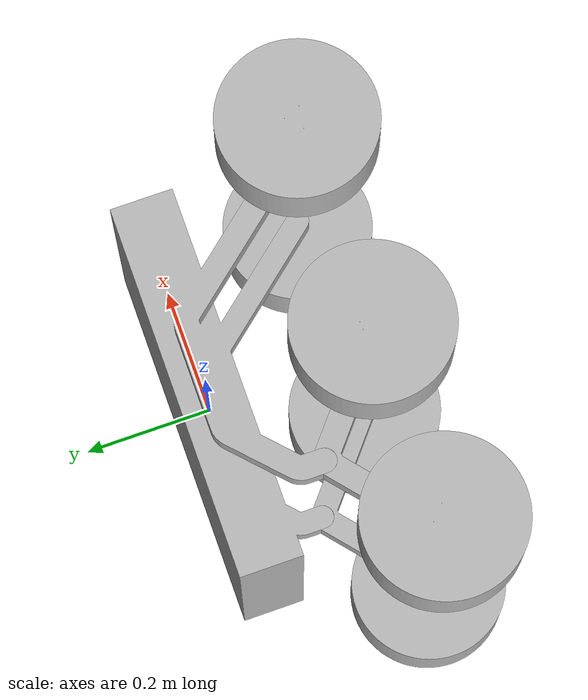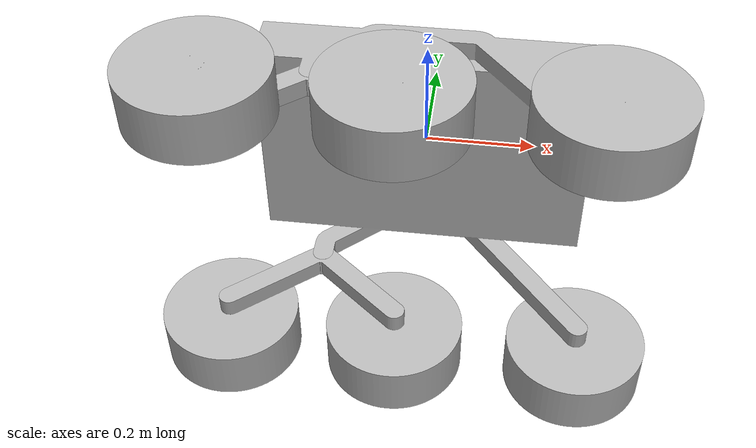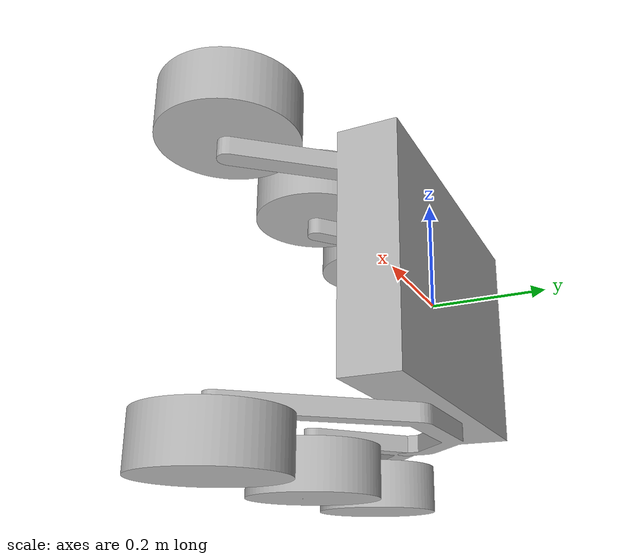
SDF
<?xml version="1.0" ?>
<sdf version="1.6">
	<model name="stairbot">
		<link name="link_BogieLeft">
			<self_collide>false</self_collide>
			<pose frame="">-0.18194899999999994 -0.19817088501537544 0.2165 0.0 -0.0 0.0</pose>
			<inertial>
				<pose frame="">0.0 0.0 0.0 0 0 0</pose>
				<mass>3.920183302812308</mass>
				<inertia>
					<ixx>0.3437134229722694</ixx>
					<ixy>-0.14135002723050621</ixy>
					<ixz>0.1544236979767753</ixz>
					<iyy>0.3523377166612942</iyy>
					<iyz>0.16819153111808594</iyz>
					<izz>0.3278440027336147</izz>
				</inertia>
			</inertial>
			<collision name="link_BogieLeft_collision">
				<geometry>
					<mesh>
						<uri>model://stairbot/meshes/CAD/link_BogieLeft.stl</uri>
						<scale>0.001 0.001 0.001</scale>
					</mesh>
				</geometry>
			</collision>
			<visual name="link_BogieLeft_visual">
				<geometry>
					<mesh>
						<uri>model://stairbot/meshes/CAD/link_BogieLeft.stl</uri>
						<scale>0.001 0.001 0.001</scale>
					</mesh>
				</geometry>
			</visual>
		</link>
		<link name="link_WheelL2">
			<self_collide>false</self_collide>
			<pose frame="">-0.028740204198052594 -0.2525773415442297 0.28072295564612065 0.0 -0.0 0.0</pose>
			<inertial>
				<pose frame="">0.0 0.0 0.0 0 0 0</pose>
				<mass>35.9313939906854</mass>
				<inertia>
					<ixx>5.2945383863462165</ixx>
					<ixy>-0.2608304578324393</ixy>
					<ixz>0.2898957467715598</ixz>
					<iyy>3.0319631512458227</iyy>
					<iyz>2.5476888243369586</iyz>
					<izz>2.608785716813732</izz>
				</inertia>
			</inertial>
			<collision name="link_WheelL2_collision">
				<geometry>
					<mesh>
						<uri>model://stairbot/meshes/CAD/link_WheelL2.stl</uri>
						<scale>0.001 0.001 0.001</scale>
					</mesh>
				</geometry>
			</collision>
			<visual name="link_WheelL2_visual">
				<geometry>
					<mesh>
						<uri>model://stairbot/meshes/CAD/link_WheelL2.stl</uri>
						<scale>0.001 0.001 0.001</scale>
					</mesh>
				</geometry>
			</visual>
		</link>
		<link name="link_WheelL1">
			<self_collide>false</self_collide>
			<pose frame="">-0.3351577958019488 -0.2525773415441829 0.28072295564612065 0.0 -0.0 0.0</pose>
			<inertial>
				<pose frame="">0.0 0.0 0.0 0 0 0</pose>
				<mass>35.93139399068536</mass>
				<inertia>
					<ixx>5.29453838637414</ixx>
					<ixy>-3.041709819521394</ixy>
					<ixz>3.380658635226414</ixz>
					<iyy>7.0384842103859935</iyy>
					<iyz>2.547688824336482</iyz>
					<izz>6.615306775981836</izz>
				</inertia>
			</inertial>
			<collision name="link_WheelL1_collision">
				<geometry>
					<mesh>
						<uri>model://stairbot/meshes/CAD/link_WheelL1.stl</uri>
						<scale>0.001 0.001 0.001</scale>
					</mesh>
				</geometry>
			</collision>
			<visual name="link_WheelL1_visual">
				<geometry>
					<mesh>
						<uri>model://stairbot/meshes/CAD/link_WheelL1.stl</uri>
						<scale>0.001 0.001 0.001</scale>
					</mesh>
				</geometry>
			</visual>
		</link>
		<link name="link_WheelL3">
			<self_collide>false</self_collide>
			<pose frame="">0.30245420419810576 -0.2525773415442754 0.28072295564612065 0.0 -0.0 0.0</pose>
			<inertial>
				<pose frame="">0.0 0.0 0.0 0 0 0</pose>
				<mass>35.931393990685336</mass>
				<inertia>
					<ixx>5.2945383863509505</ixx>
					<ixy>2.744909813796213</ixy>
					<ixz>-3.0507851226801623</ixz>
					<iyy>6.289235508600166</iyy>
					<iyz>2.5476888243374143</iyz>
					<izz>5.86605807417282</izz>
				</inertia>
			</inertial>
			<collision name="link_WheelL3_collision">
				<geometry>
					<mesh>
						<uri>model://stairbot/meshes/CAD/link_WheelL3.stl</uri>
						<scale>0.001 0.001 0.001</scale>
					</mesh>
				</geometry>
			</collision>
			<visual name="link_WheelL3_visual">
				<geometry>
					<mesh>
						<uri>model://stairbot/meshes/CAD/link_WheelL3.stl</uri>
						<scale>0.001 0.001 0.001</scale>
					</mesh>
				</geometry>
			</visual>
		</link>
		<link name="link_BogieRight">
			<self_collide>false</self_collide>
			<pose frame="">-0.18194881435621743 -0.19817088501537544 -0.21650000000000003 0.0 -0.0 0.0</pose>
			<inertial>
				<pose frame="">0.0 0.0 0.0 0 0 0</pose>
				<mass>3.9201833028123048</mass>
				<inertia>
					<ixx>0.34371342297226914</ixx>
					<ixy>-0.14134988301012716</ixy>
					<ixz>-0.15442354041724252</ixz>
					<iyy>0.35233745183187326</iyy>
					<iyz>-0.1681915311180858</iyz>
					<izz>0.32784373790419374</izz>
				</inertia>
			</inertial>
			<collision name="link_BogieRight_collision">
				<geometry>
					<mesh>
						<uri>model://stairbot/meshes/CAD/link_BogieRight.stl</uri>
						<scale>0.001 0.001 0.001</scale>
					</mesh>
				</geometry>
			</collision>
			<visual name="link_BogieRight_visual">
				<geometry>
					<mesh>
						<uri>model://stairbot/meshes/CAD/link_BogieRight.stl</uri>
						<scale>0.001 0.001 0.001</scale>
					</mesh>
				</geometry>
			</visual>
		</link>
		<link name="link_WheelR2">
			<self_collide>false</self_collide>
			<pose frame="">-0.02874001855427003 -0.2525773415442298 -0.2807229556461206 0.0 -0.0 0.0</pose>
			<inertial>
				<pose frame="">0.0 0.0 0.0 0 0 0</pose>
				<mass>35.9313939906854</mass>
				<inertia>
					<ixx>5.2945383863462165</ixx>
					<ixy>-0.2608287730304642</ixy>
					<ixz>-0.28989387422595747</ixz>
					<iyy>3.031962767827452</iyy>
					<iyz>-2.5476888243369586</iyz>
					<izz>2.6087853333953612</izz>
				</inertia>
			</inertial>
			<collision name="link_WheelR2_collision">
				<geometry>
					<mesh>
						<uri>model://stairbot/meshes/CAD/link_WheelR2.stl</uri>
						<scale>0.001 0.001 0.001</scale>
					</mesh>
				</geometry>
			</collision>
			<visual name="link_WheelR2_visual">
				<geometry>
					<mesh>
						<uri>model://stairbot/meshes/CAD/link_WheelR2.stl</uri>
						<scale>0.001 0.001 0.001</scale>
					</mesh>
				</geometry>
			</visual>
		</link>
		<link name="link_WheelR1">
			<self_collide>false</self_collide>
			<pose frame="">-0.33515761015816625 -0.2525773415441829 -0.28072295564612065 0.0 -0.0 0.0</pose>
			<inertial>
				<pose frame="">0.0 0.0 0.0 0 0 0</pose>
				<mass>35.93139399068536</mass>
				<inertia>
					<ixx>5.29453838637414</ixx>
					<ixy>-3.0417081347194186</ixy>
					<ixz>-3.380656762680811</ixz>
					<iyy>7.03847973908737</iyy>
					<iyz>-2.547688824336482</iyz>
					<izz>6.61530230468321</izz>
				</inertia>
			</inertial>
			<collision name="link_WheelR1_collision">
				<geometry>
					<mesh>
						<uri>model://stairbot/meshes/CAD/link_WheelR1.stl</uri>
						<scale>0.001 0.001 0.001</scale>
					</mesh>
				</geometry>
			</collision>
			<visual name="link_WheelR1_visual">
				<geometry>
					<mesh>
						<uri>model://stairbot/meshes/CAD/link_WheelR1.stl</uri>
						<scale>0.001 0.001 0.001</scale>
					</mesh>
				</geometry>
			</visual>
		</link>
		<link name="link_WheelR3">
			<self_collide>false</self_collide>
			<pose frame="">0.30245420419810576 -0.2525773415442754 -0.28072295564612065 0.0 -0.0 0.0</pose>
			<inertial>
				<pose frame="">0.0 0.0 0.0 0 0 0</pose>
				<mass>35.931393990685336</mass>
				<inertia>
					<ixx>5.294538386350951</ixx>
					<ixy>2.744909813796213</ixy>
					<ixz>3.0507851226801628</ixz>
					<iyy>6.289235508600166</iyy>
					<iyz>-2.547688824337415</iyz>
					<izz>5.86605807417282</izz>
				</inertia>
			</inertial>
			<collision name="link_WheelR3_collision">
				<geometry>
					<mesh>
						<uri>model://stairbot/meshes/CAD/link_WheelR3.stl</uri>
						<scale>0.001 0.001 0.001</scale>
					</mesh>
				</geometry>
			</collision>
			<visual name="link_WheelR3_visual">
				<geometry>
					<mesh>
						<uri>model://stairbot/meshes/CAD/link_WheelR3.stl</uri>
						<scale>0.001 0.001 0.001</scale>
					</mesh>
				</geometry>
			</visual>
		</link>
		<link name="link_Core">
			<self_collide>false</self_collide>
			<pose frame="">0.0041476719439908554 -0.005490555701546921 -1.4056889447407222e-18 0.0 -0.0 0.0</pose>
			<inertial>
				<pose frame="">0.0 0.0 0.0 0 0 0</pose>
				<mass>202.19060224341712</mass>
				<inertia>
					<ixx>3.493868134283269</ixx>
					<ixy>0.17520763168096998</ixy>
					<ixz>2.7966962079517544e-15</ixz>
					<iyy>9.20647439564586</iyy>
					<iyz>3.637978807091713e-16</iyz>
					<izz>6.381046423613928</izz>
				</inertia>
			</inertial>
			<collision name="link_Core_collision">
				<geometry>
					<mesh>
						<uri>model://stairbot/meshes/CAD/link_Core.stl</uri>
						<scale>0.001 0.001 0.001</scale>
					</mesh>
				</geometry>
			</collision>
			<visual name="link_Core_visual">
				<geometry>
					<mesh>
						<uri>model://stairbot/meshes/CAD/link_Core.stl</uri>
						<scale>0.001 0.001 0.001</scale>
					</mesh>
				</geometry>
			</visual>
		</link>
		<joint name="joint_BogieLeft" type="revolute">
			<parent>link_Core</parent>
			<child>link_BogieLeft</child>
			<pose frame="">9.282189122217233e-08 0.07415106540850058 -0.016499999999999952 0 0 0</pose>
			<axis>
				<xyz>0.0 0.0 -1.0</xyz>
				<limit>
					<lower>0.0</lower>
					<upper>0.0</upper>
				</limit>
				<use_parent_model_frame>0</use_parent_model_frame>
			</axis>
		</joint>
		<joint name="joint_BogieRight" type="revolute">
			<parent>link_Core</parent>
			<child>link_BogieRight</child>
			<pose frame="">-9.28218912932266e-08 0.07415106540850058 0.01650000000000002 0 0 0</pose>
			<axis>
				<xyz>0.0 0.0 -1.0</xyz>
				<limit>
					<lower>0.0</lower>
					<upper>0.0</upper>
				</limit>
				<use_parent_model_frame>0</use_parent_model_frame>
			</axis>
		</joint>
		<joint name="joint_WheelL1" type="revolute">
			<parent>link_BogieLeft</parent>
			<child>link_WheelL1</child>
			<pose frame="">4.447997525858227e-14 1.0658141036401502e-16 -0.06422295564612064 0 0 0</pose>
			<axis>
				<xyz>0.0 0.0 -1.0</xyz>
				<limit>
					<lower>0.0</lower>
					<upper>0.0</upper>
				</limit>
				<use_parent_model_frame>0</use_parent_model_frame>
			</axis>
		</joint>
		<joint name="joint_WheelL2" type="revolute">
			<parent>link_BogieLeft</parent>
			<child>link_WheelL2</child>
			<pose frame="">-4.3089976031751576e-14 4.6966874833742625e-14 -0.047722955646120654 0 0 0</pose>
			<axis>
				<xyz>0.0 0.0 1.0</xyz>
				<limit>
					<lower>0.0</lower>
					<upper>0.0</upper>
				</limit>
				<use_parent_model_frame>0</use_parent_model_frame>
			</axis>
		</joint>
		<joint name="joint_WheelL3" type="revolute">
			<parent>link_Core</parent>
			<child>link_WheelL3</child>
			<pose frame="">-1.0054179711005418e-14 9.261924560632906e-14 -0.047722955646120654 0 0 0</pose>
			<axis>
				<xyz>0.0 0.0 -1.0</xyz>
				<limit>
					<lower>0.0</lower>
					<upper>0.0</upper>
				</limit>
				<use_parent_model_frame>0</use_parent_model_frame>
			</axis>
		</joint>
		<joint name="joint_WheelR2" type="revolute">
			<parent>link_BogieRight</parent>
			<child>link_WheelR2</child>
			<pose frame="">-4.3067771571259074e-14 4.700240197053063e-14 0.0642229556461206 0 0 0</pose>
			<axis>
				<xyz>0.0 0.0 1.0</xyz>
				<limit>
					<lower>0.0</lower>
					<upper>0.0</upper>
				</limit>
				<use_parent_model_frame>0</use_parent_model_frame>
			</axis>
		</joint>
		<joint name="joint_WheelR3" type="revolute">
			<parent>link_Core</parent>
			<child>link_WheelR3</child>
			<pose frame="">-1.0054179711005418e-14 9.261924560632906e-14 0.06422295564612067 0 0 0</pose>
			<axis>
				<xyz>0.0 0.0 -1.0</xyz>
				<limit>
					<lower>0.0</lower>
					<upper>0.0</upper>
				</limit>
				<use_parent_model_frame>0</use_parent_model_frame>
			</axis>
		</joint>
		<joint name="joint_WheelR1" type="revolute">
			<parent>link_BogieRight</parent>
			<child>link_WheelR1</child>
			<pose frame="">4.447997525858227e-14 1.0658141036401502e-16 0.06422295564612064 0 0 0</pose>
			<axis>
				<xyz>0.0 0.0 -1.0</xyz>
				<limit>
					<lower>0.0</lower>
					<upper>0.0</upper>
				</limit>
				<use_parent_model_frame>0</use_parent_model_frame>
			</axis>
		</joint>
		<plugin filename="libcardsflow_gazebo_plugin.so" name="cardsflow_gazebo_plugin"/>
	</model>
</sdf>
